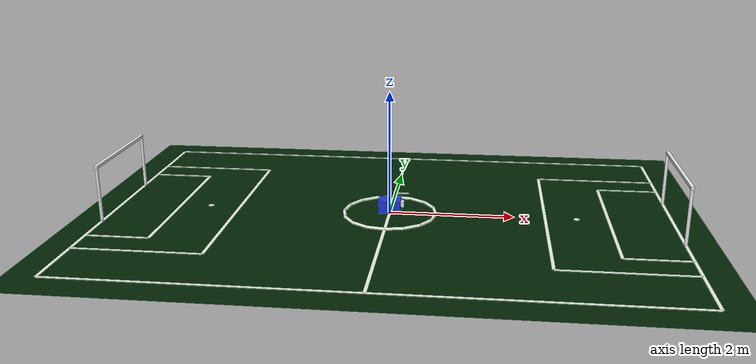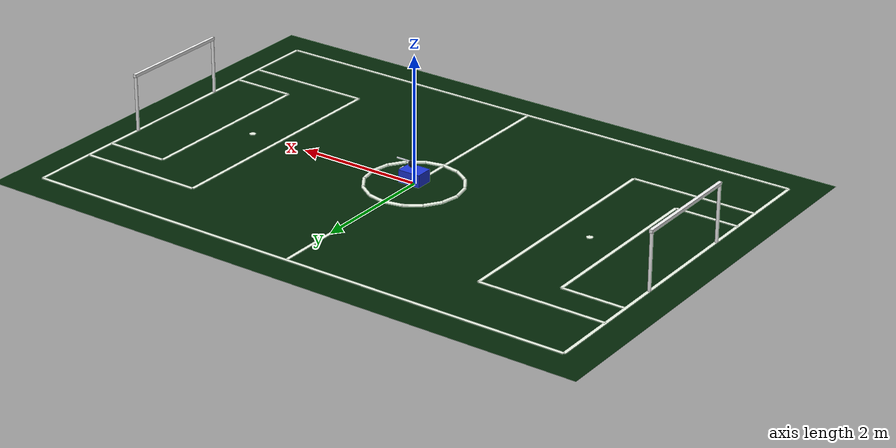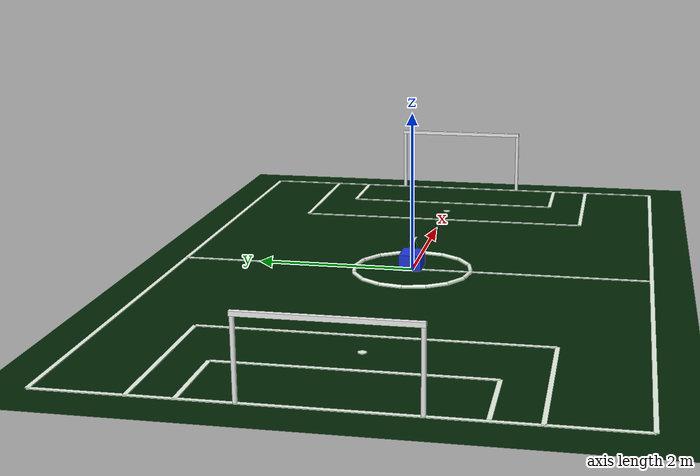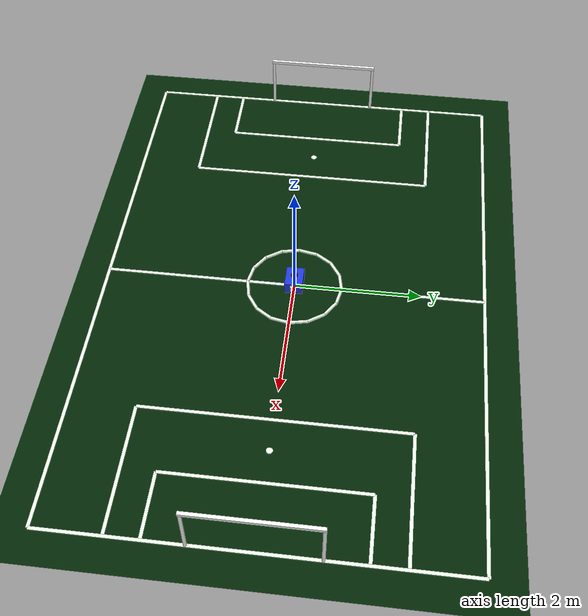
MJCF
<mujoco model="dvision_ball_field">
  <compiler angle="radian"/>
  <option timestep="0.008" gravity="0 0 -9.81"/>

  <visual>
    <global azimuth="140" elevation="-28"/>
    <quality shadowsize="2048"/>
    <map znear="0.01" zfar="50"/>
  </visual>

  <asset>
    <texture name="grid" type="2d" builtin="checker" width="512" height="512"
             rgb1="0.08 0.36 0.16" rgb2="0.10 0.42 0.18"/>
    <material name="field_mat" texture="grid" texrepeat="6 4"
              rgba="0.08 0.38 0.16 1"/>
    <material name="line_mat" rgba="0.92 0.96 0.90 1"/>
    <material name="ball_mat" rgba="1.0 0.50 0.05 1"/>
    <material name="goal_mat" rgba="0.95 0.95 0.95 1"/>
    <material name="robot_body_mat" rgba="0.12 0.22 0.86 1"/>
    <material name="robot_front_mat" rgba="0.95 0.95 1.00 1"/>
    <material name="robot_head_mat" rgba="0.05 0.06 0.09 1"/>
  </asset>

  <worldbody>
    <light name="sun" pos="0 0 10" dir="0 0 -1" diffuse="0.9 0.9 0.9" ambient="0.3 0.3 0.3" specular="0.2 0.2 0.2"/>

    <geom name="field" type="plane" size="5.0 3.5 0.02" material="field_mat"/>

    <!-- Field dimensions match config/field_features.yml: x +/-450 cm, y +/-300 cm. -->
    <geom name="line_north" type="box" pos="0 3.0 0.004" size="4.50 0.025 0.004" material="line_mat"/>
    <geom name="line_south" type="box" pos="0 -3.0 0.004" size="4.50 0.025 0.004" material="line_mat"/>
    <geom name="line_east" type="box" pos="4.5 0 0.004" size="0.025 3.00 0.004" material="line_mat"/>
    <geom name="line_west" type="box" pos="-4.5 0 0.004" size="0.025 3.00 0.004" material="line_mat"/>
    <geom name="line_center" type="box" pos="0 0 0.004" size="0.025 3.00 0.004" material="line_mat"/>

    <geom name="goal_area_east_front" type="box" pos="3.5 0 0.004" size="0.025 1.50 0.004" material="line_mat"/>
    <geom name="goal_area_east_top" type="box" pos="4.0 1.5 0.004" size="0.50 0.025 0.004" material="line_mat"/>
    <geom name="goal_area_east_bottom" type="box" pos="4.0 -1.5 0.004" size="0.50 0.025 0.004" material="line_mat"/>
    <geom name="goal_area_west_front" type="box" pos="-3.5 0 0.004" size="0.025 1.50 0.004" material="line_mat"/>
    <geom name="goal_area_west_top" type="box" pos="-4.0 1.5 0.004" size="0.50 0.025 0.004" material="line_mat"/>
    <geom name="goal_area_west_bottom" type="box" pos="-4.0 -1.5 0.004" size="0.50 0.025 0.004" material="line_mat"/>

    <geom name="penalty_area_east_front" type="box" pos="2.5 0 0.004" size="0.025 2.00 0.004" material="line_mat"/>
    <geom name="penalty_area_east_top" type="box" pos="3.5 2.0 0.004" size="1.00 0.025 0.004" material="line_mat"/>
    <geom name="penalty_area_east_bottom" type="box" pos="3.5 -2.0 0.004" size="1.00 0.025 0.004" material="line_mat"/>
    <geom name="penalty_area_west_front" type="box" pos="-2.5 0 0.004" size="0.025 2.00 0.004" material="line_mat"/>
    <geom name="penalty_area_west_top" type="box" pos="-3.5 2.0 0.004" size="1.00 0.025 0.004" material="line_mat"/>
    <geom name="penalty_area_west_bottom" type="box" pos="-3.5 -2.0 0.004" size="1.00 0.025 0.004" material="line_mat"/>

    <geom name="penalty_east" type="cylinder" pos="3.0 0 0.006" size="0.05 0.004" material="line_mat"/>
    <geom name="penalty_west" type="cylinder" pos="-3.0 0 0.006" size="0.05 0.004" material="line_mat"/>
    <body name="center_circle">
      <geom type="capsule" fromto="0.7500 0.0000 0.004 0.6929 0.2870 0.004" size="0.025" material="line_mat" contype="0" conaffinity="0" />
      <geom type="capsule" fromto="0.6929 0.2870 0.004 0.5303 0.5303 0.004" size="0.025" material="line_mat" contype="0" conaffinity="0" />
      <geom type="capsule" fromto="0.5303 0.5303 0.004 0.2870 0.6929 0.004" size="0.025" material="line_mat" contype="0" conaffinity="0" />
      <geom type="capsule" fromto="0.2870 0.6929 0.004 0.0000 0.7500 0.004" size="0.025" material="line_mat" contype="0" conaffinity="0" />
      <geom type="capsule" fromto="0.0000 0.7500 0.004 -0.2870 0.6929 0.004" size="0.025" material="line_mat" contype="0" conaffinity="0" />
      <geom type="capsule" fromto="-0.2870 0.6929 0.004 -0.5303 0.5303 0.004" size="0.025" material="line_mat" contype="0" conaffinity="0" />
      <geom type="capsule" fromto="-0.5303 0.5303 0.004 -0.6929 0.2870 0.004" size="0.025" material="line_mat" contype="0" conaffinity="0" />
      <geom type="capsule" fromto="-0.6929 0.2870 0.004 -0.7500 0.0000 0.004" size="0.025" material="line_mat" contype="0" conaffinity="0" />
      <geom type="capsule" fromto="-0.7500 0.0000 0.004 -0.6929 -0.2870 0.004" size="0.025" material="line_mat" contype="0" conaffinity="0" />
      <geom type="capsule" fromto="-0.6929 -0.2870 0.004 -0.5303 -0.5303 0.004" size="0.025" material="line_mat" contype="0" conaffinity="0" />
      <geom type="capsule" fromto="-0.5303 -0.5303 0.004 -0.2870 -0.6929 0.004" size="0.025" material="line_mat" contype="0" conaffinity="0" />
      <geom type="capsule" fromto="-0.2870 -0.6929 0.004 0.0000 -0.7500 0.004" size="0.025" material="line_mat" contype="0" conaffinity="0" />
      <geom type="capsule" fromto="0.0000 -0.7500 0.004 0.2870 -0.6929 0.004" size="0.025" material="line_mat" contype="0" conaffinity="0" />
      <geom type="capsule" fromto="0.2870 -0.6929 0.004 0.5303 -0.5303 0.004" size="0.025" material="line_mat" contype="0" conaffinity="0" />
      <geom type="capsule" fromto="0.5303 -0.5303 0.004 0.6929 -0.2870 0.004" size="0.025" material="line_mat" contype="0" conaffinity="0" />
      <geom type="capsule" fromto="0.6929 -0.2870 0.004 0.7500 0.0000 0.004" size="0.025" material="line_mat" contype="0" conaffinity="0" />
    </body>

    <body name="goal_east" pos="4.5 0 0">
      <geom type="cylinder" pos="0 0.9 0.45" size="0.025 0.45" material="goal_mat"/>
      <geom type="cylinder" pos="0 -0.9 0.45" size="0.025 0.45" material="goal_mat"/>
      <geom type="box" pos="0 0 0.9" size="0.025 0.925 0.025" material="goal_mat"/>
    </body>
    <body name="goal_west" pos="-4.5 0 0">
      <geom type="cylinder" pos="0 0.9 0.45" size="0.025 0.45" material="goal_mat"/>
      <geom type="cylinder" pos="0 -0.9 0.45" size="0.025 0.45" material="goal_mat"/>
      <geom type="box" pos="0 0 0.9" size="0.025 0.925 0.025" material="goal_mat"/>
    </body>

    <body name="robot" pos="0 0 0">
      <freejoint name="robot_freejoint"/>
      <geom name="robot_body" type="box" pos="0 0 0.13" size="0.18 0.14 0.10" mass="4.0" material="robot_body_mat" contype="0" conaffinity="0"/>
      <geom name="robot_front" type="box" pos="0.16 0 0.16" size="0.07 0.045 0.045" material="robot_front_mat" contype="0" conaffinity="0"/>
      <geom name="robot_head" type="sphere" pos="0.04 0 0.31" size="0.055" material="robot_head_mat" contype="0" conaffinity="0"/>
      <geom name="robot_heading" type="capsule" fromto="0.02 0 0.34 0.30 0 0.34" size="0.012" material="robot_front_mat" contype="0" conaffinity="0"/>
    </body>

    <body name="ball" pos="0 0 0.07">
      <freejoint name="ball_freejoint"/>
      <geom name="ball_geom" type="sphere" size="0.07" mass="0.043" material="ball_mat"
            condim="3" friction="0.8 0.02 0.002"/>
    </body>
  </worldbody>
</mujoco>
